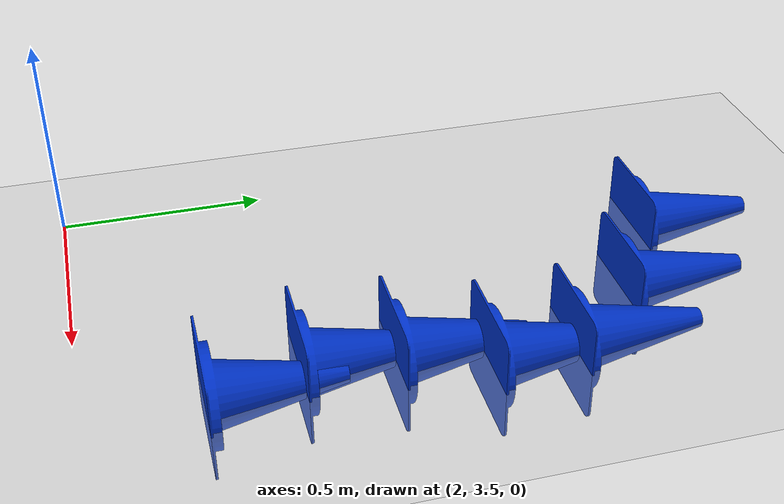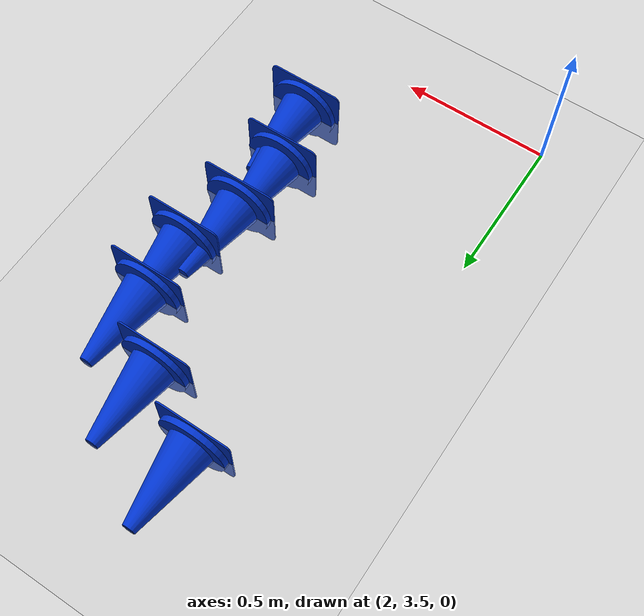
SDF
<sdf version="1.7">
 <world name="default">
  <model name="ground_plane">
   <static>1</static>
   <link name="link">
    <collision name="collision">
     <geometry><plane><normal>0 0 1</normal><size>100 100</size></plane></geometry>
     <surface><friction><ode><mu>100</mu><mu2>50</mu2></ode></friction></surface>
    </collision>
    <visual name="visual">
     <cast_shadows>0</cast_shadows>
     <geometry><plane><normal>0 0 1</normal><size>100 100</size></plane></geometry>
     <material>
      <script><uri>file://media/materials/scripts/gazebo.material</uri><name>Gazebo/Grey</name></script>
     </material>
    </visual>
   </link>
  </model>
  <model name="cone_blue">
   <static>1</static>
   <link name="link">
    <visual name="visual">
     <geometry><mesh><uri>model://cone_blue/meshes/cone.stl</uri><scale>0.001 0.001 0.001</scale></mesh></geometry>
     <material><ambient>0 0.2 0.8 1</ambient><diffuse>0 0.2 0.8 1</diffuse></material>
    </visual>
    <collision name="collision">
     <geometry><mesh><uri>model://cone_blue/meshes/cone.stl</uri><scale>0.001 0.001 0.001</scale></mesh></geometry>
    </collision>
    <inertial>
     <mass>0.1</mass>
     <inertia><ixx>0.0001</ixx><iyy>0.0001</iyy><izz>0.0001</izz><ixy>0</ixy><ixz>0</ixz><iyz>0</iyz></inertia>
    </inertial>
   </link>
   <pose>2.75031 3.78609 0 0 -0 0</pose>
  </model>
  <model name="cone_blue_4">
   <static>1</static>
   <link name="link">
    <visual name="visual">
     <geometry><mesh><uri>model://cone_blue/meshes/cone.stl</uri><scale>0.001 0.001 0.001</scale></mesh></geometry>
     <material><ambient>0 0.2 0.8 1</ambient><diffuse>0 0.2 0.8 1</diffuse></material>
    </visual>
    <collision name="collision">
     <geometry><mesh><uri>model://cone_blue/meshes/cone.stl</uri><scale>0.001 0.001 0.001</scale></mesh></geometry>
    </collision>
    <inertial>
     <mass>0.1</mass>
     <inertia><ixx>0.0001</ixx><iyy>0.0001</iyy><izz>0.0001</izz><ixy>0</ixy><ixz>0</ixz><iyz>0</iyz></inertia>
    </inertial>
   </link>
   <pose>2.69591 4.00096 0 0 -0 0</pose>
  </model>
  <model name="cone_blue_5">
   <static>1</static>
   <link name="link">
    <visual name="visual">
     <geometry><mesh><uri>model://cone_blue/meshes/cone.stl</uri><scale>0.001 0.001 0.001</scale></mesh></geometry>
     <material><ambient>0 0.2 0.8 1</ambient><diffuse>0 0.2 0.8 1</diffuse></material>
    </visual>
    <collision name="collision">
     <geometry><mesh><uri>model://cone_blue/meshes/cone.stl</uri><scale>0.001 0.001 0.001</scale></mesh></geometry>
    </collision>
    <inertial>
     <mass>0.1</mass>
     <inertia><ixx>0.0001</ixx><iyy>0.0001</iyy><izz>0.0001</izz><ixy>0</ixy><ixz>0</ixz><iyz>0</iyz></inertia>
    </inertial>
   </link>
   <pose>2.71277 4.21174 0 0 -0 0</pose>
  </model>
  <model name="cone_blue_6">
   <static>1</static>
   <link name="link">
    <visual name="visual">
     <geometry><mesh><uri>model://cone_blue/meshes/cone.stl</uri><scale>0.001 0.001 0.001</scale></mesh></geometry>
     <material><ambient>0 0.2 0.8 1</ambient><diffuse>0 0.2 0.8 1</diffuse></material>
    </visual>
    <collision name="collision">
     <geometry><mesh><uri>model://cone_blue/meshes/cone.stl</uri><scale>0.001 0.001 0.001</scale></mesh></geometry>
    </collision>
    <inertial>
     <mass>0.1</mass>
     <inertia><ixx>0.0001</ixx><iyy>0.0001</iyy><izz>0.0001</izz><ixy>0</ixy><ixz>0</ixz><iyz>0</iyz></inertia>
    </inertial>
   </link>
   <pose>2.78188 4.40944 0 0 -0 0</pose>
  </model>
  <model name="cone_blue_7">
   <static>1</static>
   <link name="link">
    <visual name="visual">
     <geometry><mesh><uri>model://cone_blue/meshes/cone.stl</uri><scale>0.001 0.001 0.001</scale></mesh></geometry>
     <material><ambient>0 0.2 0.8 1</ambient><diffuse>0 0.2 0.8 1</diffuse></material>
    </visual>
    <collision name="collision">
     <geometry><mesh><uri>model://cone_blue/meshes/cone.stl</uri><scale>0.001 0.001 0.001</scale></mesh></geometry>
    </collision>
    <inertial>
     <mass>0.1</mass>
     <inertia><ixx>0.0001</ixx><iyy>0.0001</iyy><izz>0.0001</izz><ixy>0</ixy><ixz>0</ixz><iyz>0</iyz></inertia>
    </inertial>
   </link>
   <pose>2.77037 4.60934 0 0 -0 0</pose>
  </model>
  <model name="cone_blue_8">
   <static>1</static>
   <link name="link">
    <visual name="visual">
     <geometry><mesh><uri>model://cone_blue/meshes/cone.stl</uri><scale>0.001 0.001 0.001</scale></mesh></geometry>
     <material><ambient>0 0.2 0.8 1</ambient><diffuse>0 0.2 0.8 1</diffuse></material>
    </visual>
    <collision name="collision">
     <geometry><mesh><uri>model://cone_blue/meshes/cone.stl</uri><scale>0.001 0.001 0.001</scale></mesh></geometry>
    </collision>
    <inertial>
     <mass>0.1</mass>
     <inertia><ixx>0.0001</ixx><iyy>0.0001</iyy><izz>0.0001</izz><ixy>0</ixy><ixz>0</ixz><iyz>0</iyz></inertia>
    </inertial>
   </link>
   <pose>2.59646 4.798 0 0 -0 0</pose>
  </model>
  <model name="cone_blue_9">
   <static>1</static>
   <link name="link">
    <visual name="visual">
     <geometry><mesh><uri>model://cone_blue/meshes/cone.stl</uri><scale>0.001 0.001 0.001</scale></mesh></geometry>
     <material><ambient>0 0.2 0.8 1</ambient><diffuse>0 0.2 0.8 1</diffuse></material>
    </visual>
    <collision name="collision">
     <geometry><mesh><uri>model://cone_blue/meshes/cone.stl</uri><scale>0.001 0.001 0.001</scale></mesh></geometry>
    </collision>
    <inertial>
     <mass>0.1</mass>
     <inertia><ixx>0.0001</ixx><iyy>0.0001</iyy><izz>0.0001</izz><ixy>0</ixy><ixz>0</ixz><iyz>0</iyz></inertia>
    </inertial>
   </link>
   <pose>2.35634 4.93302 0 0 -0 0</pose>
  </model>
  <model name="cone_yellow_0">
   <static>1</static>
   <link name="link">
    <visual name="visual">
     <geometry>
      <mesh><uri>model://cone_yellow/meshes/cone.stl</uri><scale>0.001 0.001 0.001</scale></mesh>
     </geometry>
     <material><ambient>1 0.82 0 1</ambient><diffuse>1 0.82 0 1</diffuse></material>
    </visual>
    <collision name="collision">
     <geometry>
      <mesh><uri>model://cone_yellow/meshes/cone.stl</uri><scale>0.001 0.001 0.001</scale></mesh>
     </geometry>
    </collision>
    <inertial>
     <mass>0.1</mass>
     <inertia><ixx>0.0001</ixx><iyy>0.0001</iyy><izz>0.0001</izz><ixy>0</ixy><ixz>0</ixz><iyz>0</iyz></inertia>
    </inertial>
   </link>
   <pose>2.28787 4.43632 0 0 -0 0</pose>
  </model>
  <model name="cone_yellow_1">
   <static>1</static>
   <link name="link">
    <visual name="visual">
     <geometry>
      <mesh><uri>model://cone_yellow/meshes/cone.stl</uri><scale>0.001 0.001 0.001</scale></mesh>
     </geometry>
     <material><ambient>1 0.82 0 1</ambient><diffuse>1 0.82 0 1</diffuse></material>
    </visual>
    <collision name="collision">
     <geometry>
      <mesh><uri>model://cone_yellow/meshes/cone.stl</uri><scale>0.001 0.001 0.001</scale></mesh>
     </geometry>
    </collision>
    <inertial>
     <mass>0.1</mass>
     <inertia><ixx>0.0001</ixx><iyy>0.0001</iyy><izz>0.0001</izz><ixy>0</ixy><ixz>0</ixz><iyz>0</iyz></inertia>
    </inertial>
   </link>
   <pose>2.28726 4.23549 0 0 -0 0</pose>
  </model>
  <model name="cone_yellow_3">
   <static>1</static>
   <link name="link">
    <visual name="visual">
     <geometry>
      <mesh><uri>model://cone_yellow/meshes/cone.stl</uri><scale>0.001 0.001 0.001</scale></mesh>
     </geometry>
     <material><ambient>1 0.82 0 1</ambient><diffuse>1 0.82 0 1</diffuse></material>
    </visual>
    <collision name="collision">
     <geometry>
      <mesh><uri>model://cone_yellow/meshes/cone.stl</uri><scale>0.001 0.001 0.001</scale></mesh>
     </geometry>
    </collision>
    <inertial>
     <mass>0.1</mass>
     <inertia><ixx>0.0001</ixx><iyy>0.0001</iyy><izz>0.0001</izz><ixy>0</ixy><ixz>0</ixz><iyz>0</iyz></inertia>
    </inertial>
   </link>
   <pose>2.29638 3.82865 0 0 -0 0</pose>
  </model>
  <model name="cone_yellow_4">
   <static>1</static>
   <link name="link">
    <visual name="visual">
     <geometry>
      <mesh><uri>model://cone_yellow/meshes/cone.stl</uri><scale>0.001 0.001 0.001</scale></mesh>
     </geometry>
     <material><ambient>1 0.82 0 1</ambient><diffuse>1 0.82 0 1</diffuse></material>
    </visual>
    <collision name="collision">
     <geometry>
      <mesh><uri>model://cone_yellow/meshes/cone.stl</uri><scale>0.001 0.001 0.001</scale></mesh>
     </geometry>
    </collision>
    <inertial>
     <mass>0.1</mass>
     <inertia><ixx>0.0001</ixx><iyy>0.0001</iyy><izz>0.0001</izz><ixy>0</ixy><ixz>0</ixz><iyz>0</iyz></inertia>
    </inertial>
   </link>
   <pose>2.39422 3.6007 0 0 -0 0</pose>
  </model>
 </world>
</sdf>
